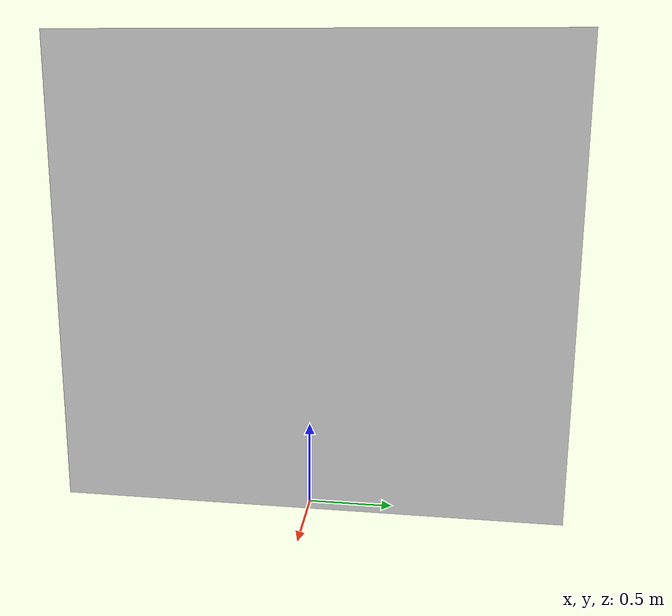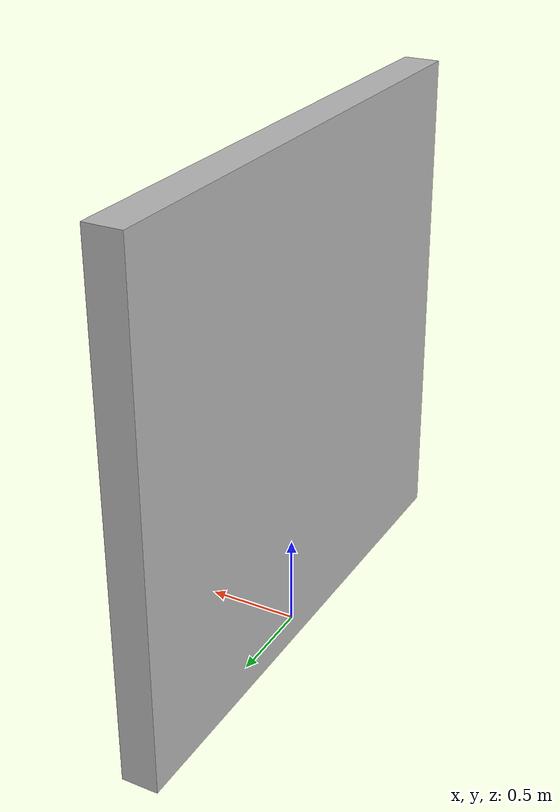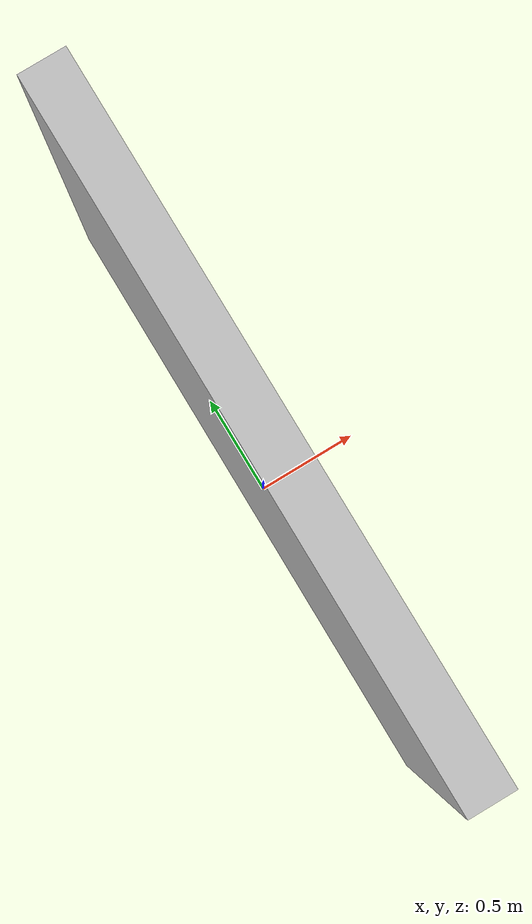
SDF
<?xml version="1.0" ?>
<sdf version="1.5">
  <model name="concrete20x300x280">
    <static>1</static>
    <link name="link">
      <pose>0 0 1.4 0 0 0</pose>

      <visual name="visual">
        <geometry>
          <box>
            <size>0.2 3.0 2.8</size>
          </box>
        </geometry>
      </visual>

    </link>

    <plugin name="concrete" filename="libgazebo_rad_obstacle.so">
      <depth>0.2</depth>
      <width>3.0</width>
      <height>2.8</height>
      <material>concrete</material>
      <density>2.3</density> <!-- g/cm^3 -->
      <mac60kev>2.66E-01</mac60kev> <!-- cm^2/g -->
      <mac600kev>6.236E-02</mac600kev> <!-- cm^2/g -->
    </plugin>

  </model>
</sdf>
